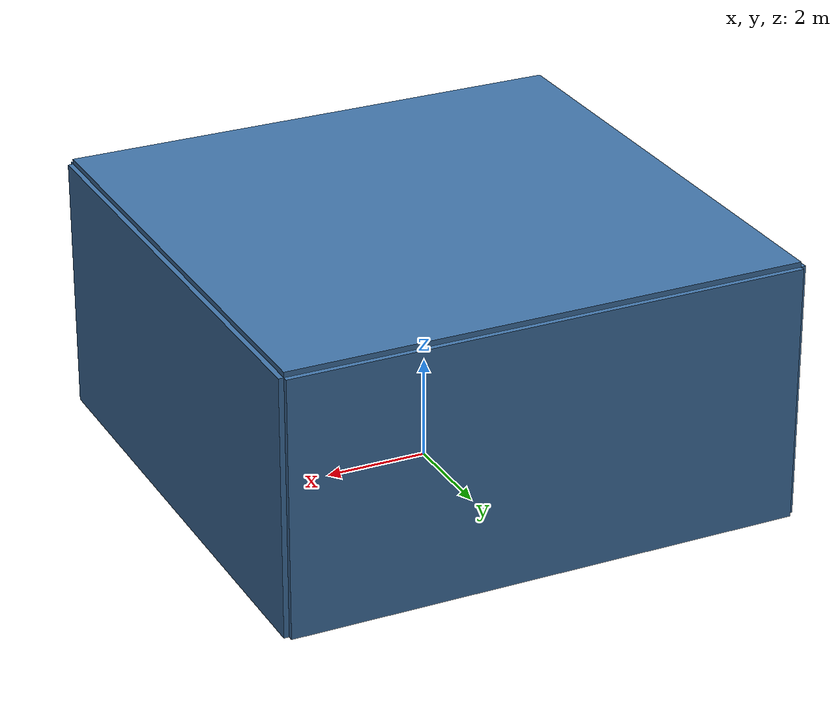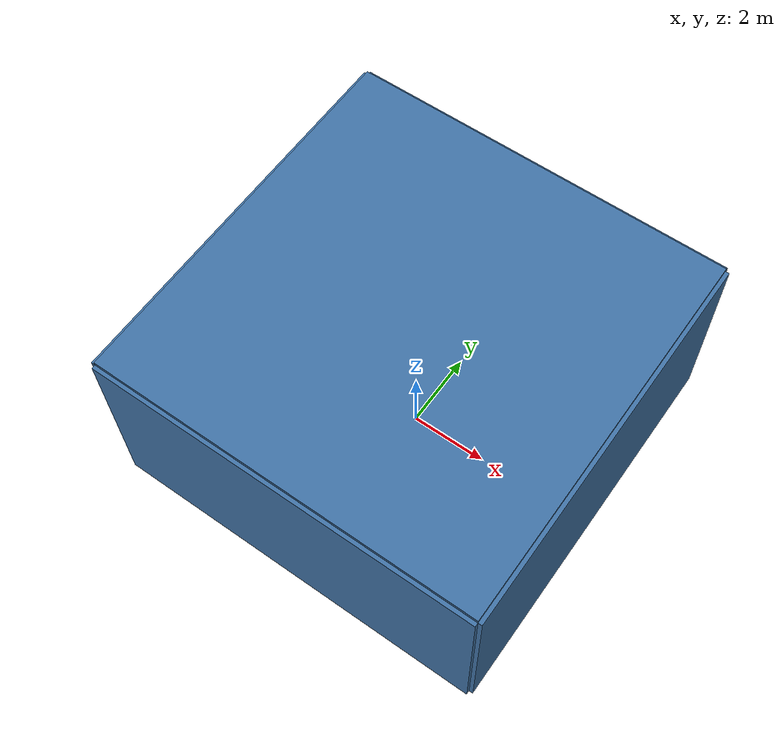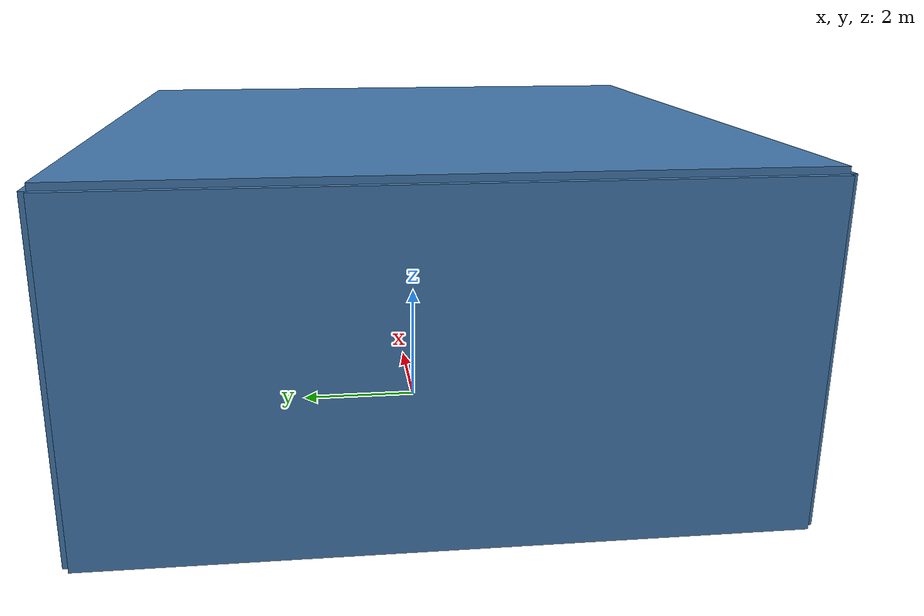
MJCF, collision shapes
<mujoco model="Skydio X2">
  <compiler autolimits="true" assetdir="assets"/>

  <option timestep="0.001" density="1.225" viscosity="1.8e-5"/>

  <default>
    <default class="x2">
      <geom mass="0"/>
      <motor ctrlrange="0 13"/>
      <mesh scale="0.01 0.01 0.01"/>
      <default class="visual">
        <geom group="2" type="mesh" contype="0" conaffinity="0"/>
      </default>
      <default class="collision">
        <geom group="3" type="box"/>
        <default class="rotor">
          <geom type="ellipsoid" size=".13 .13 .01"/>
        </default>
      </default>
      <site group="5"/>
    </default>
  </default>

  <asset>
    <texture type="2d" builtin="checker" name="texplane" rgb1=".8 .8 .8" rgb2=".6 .6 .6" width="512" height="512"/>
    <material name="matplane" reflectance="0.0" texture="texplane" texrepeat="5 5" texuniform="true"/>

    <texture type="2d" builtin="checker" name="texwall" rgb1=".3 .5 .7" rgb2=".2 .4 .6" width="512" height="512"/>
    <material name="matwall" texture="texwall" texrepeat="6 6" rgba="1 1 1 0.4"/>

    <texture type="2d" file="X2_lowpoly_texture_SpinningProps_1024.png"/>
    <material name="phong3SG" texture="X2_lowpoly_texture_SpinningProps_1024"/>
    <material name="invisible" rgba="0 0 0 0"/>

    <mesh class="x2" file="X2_lowpoly.obj"/>
  </asset>

  <worldbody>
    <light directional="true" pos="0 0 5" dir="0 0 -1" diffuse="0.8 0.8 0.8" specular="0.2 0.2 0.2"/>
    <!-- Environment boundary (translucent box) -->
    <geom name="floor" type="plane" size="5 5 0.1" material="matplane"/>
    <!-- Adding a bounding box to keep the drone from flying away -->
    <geom name="wall1" type="box" size="5 0.1 2.5" pos="0 5 2.5" material="matwall"/>
    <geom name="wall2" type="box" size="5 0.1 2.5" pos="0 -5 2.5" material="matwall"/>
    <geom name="wall3" type="box" size="0.1 5 2.5" pos="5 0 2.5" material="matwall"/>
    <geom name="wall4" type="box" size="0.1 5 2.5" pos="-5 0 2.5" material="matwall"/>
    <geom name="ceiling" type="box" size="5 5 0.1" pos="0 0 5" material="matwall"/>

    <body name="x2" pos="0 0 0.1" childclass="x2">
      <freejoint/>
      <!-- Placed camera behind the drone (+X), looking forward (-X), pitched down ~15 deg -->
      <camera name="track" pos="2.0 0 1" xyaxes="0 1 0 -0.259 0 0.966" mode="track"/>
      <site name="imu" pos="0 0 .02"/>
      <geom material="phong3SG" mesh="X2_lowpoly" class="visual" quat="0 0 1 1"/>
      <geom class="collision" size=".06 .027 .02" pos=".04 0 .02"/>
      <geom class="collision" size=".06 .027 .02" pos=".04 0 .06"/>
      <geom class="collision" size=".05 .027 .02" pos="-.07 0 .065"/>
      <geom class="collision" size=".023 .017 .01" pos="-.137 .008 .065" quat="1 0 0 1"/>
      <geom name="rotor1" class="rotor" pos="-.14 -.18 .05" mass=".25"/>
      <geom name="rotor2" class="rotor" pos="-.14 .18 .05" mass=".25"/>
      <geom name="rotor3" class="rotor" pos=".14 .18 .08" mass=".25"/>
      <geom name="rotor4" class="rotor" pos=".14 -.18 .08" mass=".25"/>
      <geom size=".16 .04 .02" pos="0 0 0.02" type="ellipsoid" mass=".325" class="visual" material="invisible"/>
      <site name="thrust1" pos="-.14 -.18 .05"/>
      <site name="thrust2" pos="-.14 .18 .05"/>
      <site name="thrust3" pos=".14 .18 .08"/>
      <site name="thrust4" pos=".14 -.18 .08"/>
    </body>
  </worldbody>

  <actuator>
    <motor class="x2" name="thrust1" site="thrust1" gear="0 0 1 0 0 -.0201"/>
    <motor class="x2" name="thrust2" site="thrust2" gear="0 0 1 0 0  .0201"/>
    <motor class="x2" name="thrust3" site="thrust3" gear="0 0 1 0 0 -.0201"/>
    <motor class="x2" name="thrust4" site="thrust4" gear="0 0 1 0 0  .0201"/>
  </actuator>

  <sensor>
    <gyro name="body_gyro" site="imu"/>
    <accelerometer name="body_linacc" site="imu"/>
    <framequat name="body_quat" objtype="site" objname="imu"/>
  </sensor>

  <keyframe>
    <key name="hover" qpos="0 0 .3 1 0 0 0" ctrl="3.2495625 3.2495625 3.2495625 3.2495625"/>
  </keyframe>
</mujoco>
